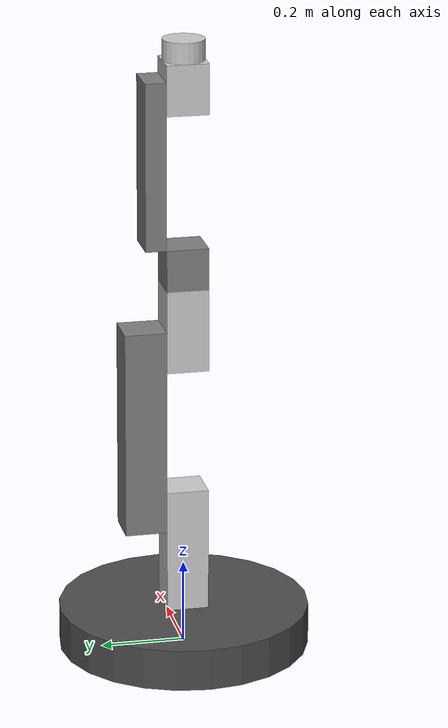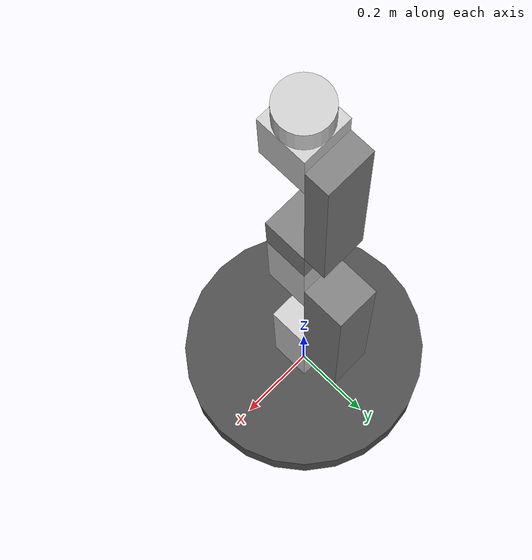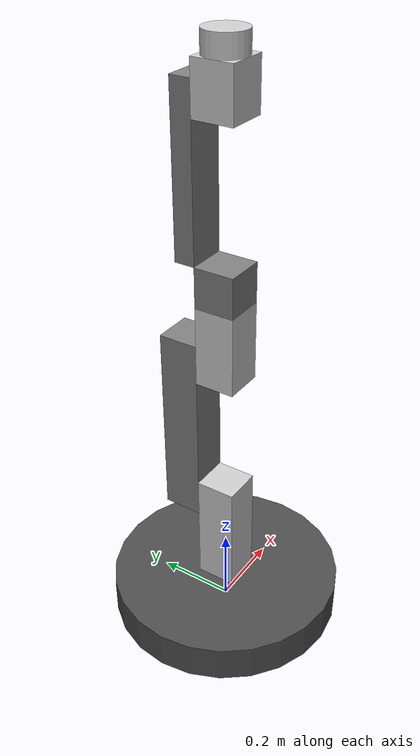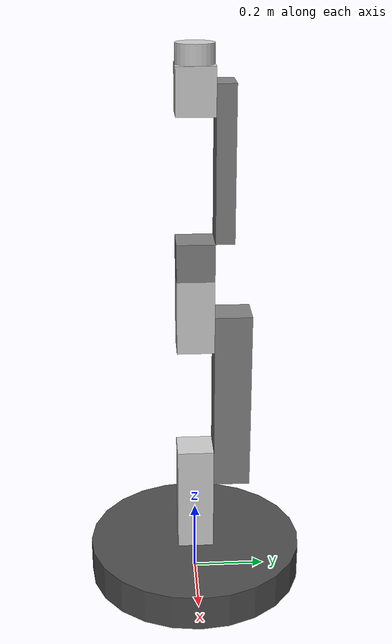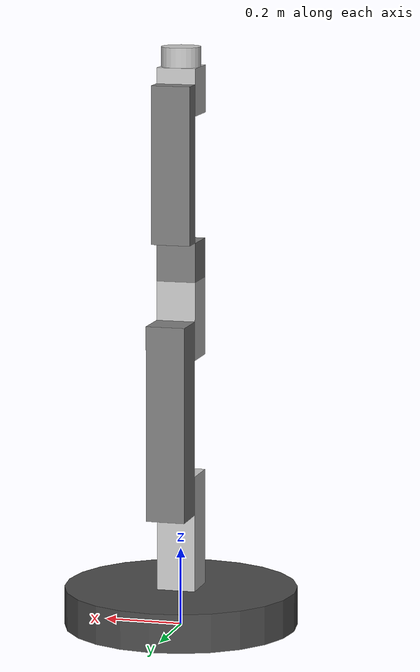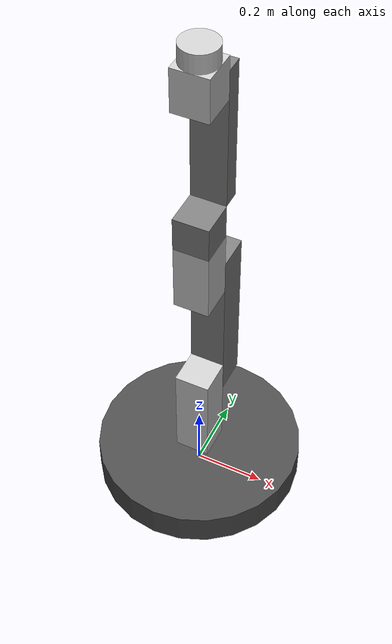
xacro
<?xml version="1.0" ?>
<robot name="manipulator1_robot" xmlns:xacro="http://www.ros.org/wiki/xacro">

    <xacro:include filename="$(find manipulator1_robot_description)/urdf/gazebo.urdf.xacro"/>

    <link name="world"/>
    <link name="base_link">
        <visual>
            <origin xyz="0 0 0.05" rpy="0 0 0"/>
            <geometry>
                <cylinder radius="0.3" length="0.1"/>
            </geometry>
            <material name="dark_gray">
                <color rgba="0.3 0.3 0.3 1.0"/>
            </material>
        </visual>
        <collision>
            <origin xyz="0 0 0.05" rpy="0 0 0"/>
            <geometry>
                <cylinder radius="0.3" length="0.1"/>
            </geometry>
        </collision>
        <inertial>
            <origin xyz="0 0 0" rpy="0 0 0"/>
            <mass value="40.0"/>
            <inertia ixx="10.0" ixy="0.0" ixz="0.0" iyy="10.0" iyz="0.0" izz="10.0"/>
        </inertial>
    </link>

    <joint name="world_to_base_link" type="fixed">
        <parent link="world"/>
        <child link="base_link"/>
        <origin xyz="0 0 0" rpy="0 0 0"/>
    </joint>

    <link name="link1">
        <visual>
            <origin xyz="0 0 0.15" rpy="0 0 0"/>
            <geometry>
                <box size="0.10 0.10 0.3"/>
            </geometry>
            <material name="light_gray">
                <color rgba="0.8 0.8 0.8 1.0"/>
            </material>
        </visual>
        <collision>
            <origin xyz="0 0 0.15" rpy="0 0 0"/>
            <geometry>
                <box size="0.10 0.10 0.3"/>
            </geometry>
        </collision>
        <inertial>
            <origin xyz="0 0 0" rpy="0 0 0"/>
            <mass value="5.0"/>
            <inertia ixx="0.05" ixy="0.0" ixz="0.0" iyy="0.05" iyz="0.0" izz="0.05"/>
        </inertial>
    </link>

    <joint name="joint1" type="revolute">
        <parent link="base_link"/>
        <child link="link1"/>
        <origin xyz="0 0 0.1" rpy="0 0 0"/>
        <axis xyz="0 0 1"/>
        <limit effort="1000" velocity="1.0" lower="${-pi}" upper="${pi}"/>
    </joint>

    <transmission name="joint1_tran">
        <type>transmission_interface/SimpleTransmission</type>
        <joint name="joint1" >
            <hardwareInterface>hardware_interface/PositionJointInterface</hardwareInterface>
            <mechanicalReduction>1</mechanicalReduction>
        </joint>

        <actuator name="joint1_motor">
            <hardwareInterface>hardware_interface/PositionJointInterface</hardwareInterface>
            <mechanicalReduction>1</mechanicalReduction>
        </actuator>
    </transmission>

    <link name="link2">
        <visual>
            <origin xyz="0 0.05 0.20" rpy="0 0 0"/>
            <geometry>
                <box size="0.1 0.1 0.5"/>
            </geometry>
            <material name="gray">
                <color rgba="0.5 0.5 0.5 1.0"/>
            </material>
        </visual>
        <collision>
            <origin xyz="0 0.05 0.20" rpy="0 0 0"/>
            <geometry>
                <box size="0.1 0.1 0.5"/>
            </geometry>
        </collision>
        <inertial>
            <origin xyz="0 0 0" rpy="0 0 0"/>
            <mass value="3.0"/>
            <inertia ixx="0.03" ixy="0.0" ixz="0.0" iyy="0.03" iyz="0.0" izz="0.03"/>
        </inertial>
    </link>

    <joint name="joint2" type="revolute">
        <parent link="link1"/>
        <child link="link2"/>
        <origin xyz="0 0.05 0.25" rpy="0 0 0"/>
        <axis xyz="0 1 0"/>
        <limit effort="1000" velocity="1.0" lower="-2.0" upper="2.0"/>
    </joint>

    <transmission name="joint2_tran">
        <type>transmission_interface/SimpleTransmission</type>
        <joint name="joint2" >
            <hardwareInterface>hardware_interface/PositionJointInterface</hardwareInterface>
            <mechanicalReduction>1</mechanicalReduction>
        </joint>

        <actuator name="joint2_motor">
            <hardwareInterface>hardware_interface/PositionJointInterface</hardwareInterface>
            <mechanicalReduction>1</mechanicalReduction>
        </actuator>
    </transmission>

    <link name="link3">
        <visual>
            <origin xyz="0 -0.05 0.05" rpy="0 0 0"/>
            <geometry>
                <box size="0.1 0.1 0.2"/>
            </geometry>
            <material name="light_gray">
                <color rgba="0.8 0.8 0.8 1.0"/>
            </material>
        </visual>
        <collision>
            <origin xyz="0 -0.05 0.05" rpy="0 0 0"/>
            <geometry>
                <box size="0.1 0.1 0.2"/>
            </geometry>
        </collision>
        <inertial>
            <origin xyz="0 0 0" rpy="0 0 0"/>
            <mass value="1.0"/>
            <inertia ixx="0.01" ixy="0.0" ixz="0.0" iyy="0.01" iyz="0.0" izz="0.01"/>
        </inertial>
    </link>

    <joint name="joint3" type="revolute">
        <parent link="link2"/>
        <child link="link3"/>
        <origin xyz="0 0 0.4" rpy="0 0 0"/>
        <axis xyz="0 1 0"/>
        <limit effort="1000" velocity="1.0" lower="-2.0" upper="2.0"/>
    </joint>

    <transmission name="joint3_tran">
        <type>transmission_interface/SimpleTransmission</type>
        <joint name="joint3" >
            <hardwareInterface>hardware_interface/PositionJointInterface</hardwareInterface>
            <mechanicalReduction>1</mechanicalReduction>
        </joint>

        <actuator name="joint3_motor">
            <hardwareInterface>hardware_interface/PositionJointInterface</hardwareInterface>
            <mechanicalReduction>1</mechanicalReduction>
        </actuator>
    </transmission>

    <link name="link4">
        <visual>
            <origin xyz="0 0 0.05" rpy="0 0 0"/>
            <geometry>
                <box size="0.1 0.1 0.1"/>
            </geometry>
            <material name="gray"/>
        </visual>
        <collision>
            <origin xyz="0 0 0.05" rpy="0 0 0"/>
            <geometry>
                <box size="0.1 0.1 0.1"/>
            </geometry>
        </collision>
        <inertial>
            <origin xyz="0 0 0" rpy="0 0 0"/>
            <mass value="1.0"/>
            <inertia ixx="0.01" ixy="0.0" ixz="0.0" iyy="0.01" iyz="0.0" izz="0.01"/>
        </inertial>
    </link>

    <joint name="joint4" type="revolute">
        <parent link="link3"/>
        <child link="link4"/>
        <origin xyz="0 -0.05 0.15" rpy="0 0 0"/>
        <axis xyz="0 0 1"/>
        <limit effort="1000" velocity="1.0" lower="${-pi}" upper="${pi}"/>
    </joint>

    <transmission name="joint4_tran">
        <type>transmission_interface/SimpleTransmission</type>
        <joint name="joint4" >
            <hardwareInterface>hardware_interface/PositionJointInterface</hardwareInterface>
            <mechanicalReduction>1</mechanicalReduction>
        </joint>

        <actuator name="joint4_motor">
            <hardwareInterface>hardware_interface/PositionJointInterface</hardwareInterface>
            <mechanicalReduction>1</mechanicalReduction>
        </actuator>
    </transmission>

    <link name="link4_1">
        <visual>
            <origin xyz="0 0.025 0.15" rpy="0 0 0"/>
            <geometry>
                <box size="0.1 0.05 0.4"/>
            </geometry>
            <material name="gray"/>
        </visual>
        <collision>
            <origin xyz="0 0.025 0.15" rpy="0 0 0"/>
            <geometry>
                <box size="0.1 0.05 0.4"/>
            </geometry>
        </collision>
        <inertial>
            <origin xyz="0 0 0" rpy="0 0 0"/>
            <mass value="1.0"/>
            <inertia ixx="0.01" ixy="0.0" ixz="0.0" iyy="0.01" iyz="0.0" izz="0.01"/>
        </inertial>
    </link>

    <joint name="joint_link4" type="fixed">
        <parent link="link4"/>
        <child link="link4_1"/>
        <origin xyz="0 0.05 0.15" rpy="0 0 0"/>
    </joint>

    <link name="link5">
        <visual>
            <origin xyz="0 -0.05 0.03" rpy="0 0 0"/>
            <geometry>
                <box size="0.1 0.1 0.12"/>
            </geometry>
            <material name="light_gray"/>
        </visual>
        <collision>
            <origin xyz="0 -0.05 0.03" rpy="0 0 0"/>
            <geometry>
                <box size="0.1 0.1 0.12"/>
            </geometry>
        </collision>
        <inertial>
            <origin xyz="0 0 0" rpy="0 0 0"/>
            <mass value="1.0"/>
            <inertia ixx="0.01" ixy="0.0" ixz="0.0" iyy="0.01" iyz="0.0" izz="0.01"/>
        </inertial>
    </link>

    <joint name="joint5" type="revolute">
        <parent link="link4_1"/>
        <child link="link5"/>
        <origin xyz="0 0 0.3" rpy="0 0 0"/>
        <axis xyz="0 1 0"/>
        <limit effort="1000" velocity="1.0" lower="-2.0" upper="2.0"/>
    </joint>

    <transmission name="joint5_tran">
        <type>transmission_interface/SimpleTransmission</type>
        <joint name="joint5" >
            <hardwareInterface>hardware_interface/PositionJointInterface</hardwareInterface>
            <mechanicalReduction>1</mechanicalReduction>
        </joint>

        <actuator name="joint5_motor">
            <hardwareInterface>hardware_interface/PositionJointInterface</hardwareInterface>
            <mechanicalReduction>1</mechanicalReduction>
        </actuator>
    </transmission>

    <link name="link6">
        <visual>
            <origin xyz="0 0 0.03" rpy="0 0 0"/>
            <geometry>
                <cylinder radius="0.05" length="0.06"/>
            </geometry>
            <material name="light_gray"/>
        </visual>
        <collision>
            <origin xyz="0 0 0.03" rpy="0 0 0"/>
            <geometry>
                <cylinder radius="0.05" length="0.06"/>
            </geometry>
        </collision>
        <inertial>
            <origin xyz="0 0 0" rpy="0 0 0"/>
            <mass value="0.2"/>
            <inertia ixx="0.005" ixy="0.0" ixz="0.0" iyy="0.005" iyz="0.0" izz="0.005"/>
        </inertial>
    </link>

    <joint name="joint6" type="revolute">
        <parent link="link5"/>
        <child link="link6"/>
        <origin xyz="0 -0.05 0.08" rpy="0 0 0"/>
        <axis xyz="0 0 1"/>
        <limit effort="1000" velocity="1.0" lower="${-pi}" upper="${pi}"/>
    </joint>

    <transmission name="joint6_tran">
        <type>transmission_interface/SimpleTransmission</type>
        <joint name="joint6" >
            <hardwareInterface>hardware_interface/PositionJointInterface</hardwareInterface>
            <mechanicalReduction>1</mechanicalReduction>
        </joint>

        <actuator name="joint6_motor">
            <hardwareInterface>hardware_interface/PositionJointInterface</hardwareInterface>
            <mechanicalReduction>1</mechanicalReduction>
        </actuator>
    </transmission>
</robot>
